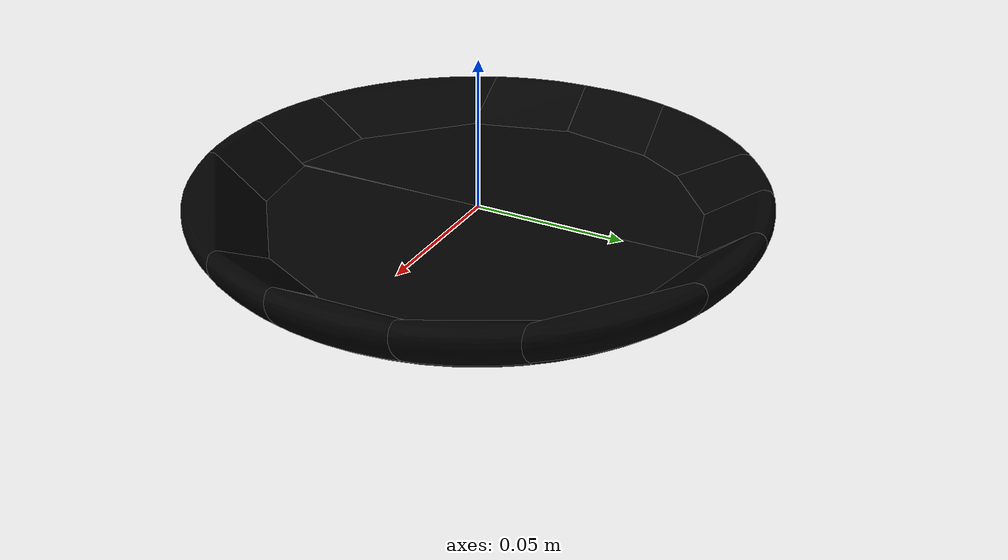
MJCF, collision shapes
<mujoco model="plate_52">
  <asset>
    <mesh file="visual/model_normalized_0.obj" name="model_normalized_0_vis" scale="0.185 0.185 0.185" refquat="1.0 0.0 0.0 0.0" />
    <mesh file="visual/model_normalized_1.obj" name="model_normalized_1_vis" scale="0.185 0.185 0.185" refquat="1.0 0.0 0.0 0.0" />
    <texture type="2d" name="image0" file="visual/image0.png" />
    <material name="plate_bottom" texture="image0" specular="0.5" shininess="0.15999998099999999" />
    <material name="plate_top" texture="image0" specular="0.5" shininess="0.15999998099999999" />
    <mesh file="collision/model_collision_0.obj" name="model_collision_0" scale="0.185 0.185 0.185" refquat="1.0 0.0 0.0 0.0" />
    <mesh file="collision/model_collision_1.obj" name="model_collision_1" scale="0.185 0.185 0.185" refquat="1.0 0.0 0.0 0.0" />
    <mesh file="collision/model_collision_2.obj" name="model_collision_2" scale="0.185 0.185 0.185" refquat="1.0 0.0 0.0 0.0" />
    <mesh file="collision/model_collision_3.obj" name="model_collision_3" scale="0.185 0.185 0.185" refquat="1.0 0.0 0.0 0.0" />
    <mesh file="collision/model_collision_4.obj" name="model_collision_4" scale="0.185 0.185 0.185" refquat="1.0 0.0 0.0 0.0" />
    <mesh file="collision/model_collision_5.obj" name="model_collision_5" scale="0.185 0.185 0.185" refquat="1.0 0.0 0.0 0.0" />
    <mesh file="collision/model_collision_6.obj" name="model_collision_6" scale="0.185 0.185 0.185" refquat="1.0 0.0 0.0 0.0" />
    <mesh file="collision/model_collision_7.obj" name="model_collision_7" scale="0.185 0.185 0.185" refquat="1.0 0.0 0.0 0.0" />
    <mesh file="collision/model_collision_8.obj" name="model_collision_8" scale="0.185 0.185 0.185" refquat="1.0 0.0 0.0 0.0" />
    <mesh file="collision/model_collision_9.obj" name="model_collision_9" scale="0.185 0.185 0.185" refquat="1.0 0.0 0.0 0.0" />
    <mesh file="collision/model_collision_10.obj" name="model_collision_10" scale="0.185 0.185 0.185" refquat="1.0 0.0 0.0 0.0" />
    <mesh file="collision/model_collision_11.obj" name="model_collision_11" scale="0.185 0.185 0.185" refquat="1.0 0.0 0.0 0.0" />
    <mesh file="collision/model_collision_12.obj" name="model_collision_12" scale="0.185 0.185 0.185" refquat="1.0 0.0 0.0 0.0" />
    <mesh file="collision/model_collision_13.obj" name="model_collision_13" scale="0.185 0.185 0.185" refquat="1.0 0.0 0.0 0.0" />
    <mesh file="collision/model_collision_14.obj" name="model_collision_14" scale="0.185 0.185 0.185" refquat="1.0 0.0 0.0 0.0" />
    <mesh file="collision/model_collision_15.obj" name="model_collision_15" scale="0.185 0.185 0.185" refquat="1.0 0.0 0.0 0.0" />
  </asset>
  <default>
    <default class="region">
      <geom group="1" conaffinity="0" contype="0" rgba="0 1 0 0" />
    </default>
  </default>
  <worldbody>
    <body>
      <body name="object">
        <geom density="0" type="mesh" mesh="model_normalized_0_vis" conaffinity="0" contype="0" group="2" material="plate_top" mass="0.18" />
        <geom density="0" type="mesh" mesh="model_normalized_1_vis" conaffinity="0" contype="0" group="2" material="plate_bottom" />
        <geom class="region" name="reg_bbox" type="box" pos="-0.00013850024999999808 -1.3412500000128947e-07 -6.983749999999941e-06" size="0.09107944235 0.09107499495 0.01223325265" />
        <geom density="0" friction="1.2 0.1 0.001" type="mesh" group="3" rgba="0 0 0 0" mesh="model_collision_0"  condim="4"/>        <geom density="0" friction="1.2 0.1 0.001" type="mesh" group="3" rgba="0 0 0 0" mesh="model_collision_1"  condim="4"/>        <geom density="0" friction="1.2 0.1 0.001" type="mesh" group="3" rgba="0 0 0 0" mesh="model_collision_2"  condim="4"/>        <geom density="0" friction="1.2 0.1 0.001" type="mesh" group="3" rgba="0 0 0 0" mesh="model_collision_3"  condim="4"/>        <geom density="0" friction="1.2 0.1 0.001" type="mesh" group="3" rgba="0 0 0 0" mesh="model_collision_4"  condim="4"/>        <geom density="0" friction="1.2 0.1 0.001" type="mesh" group="3" rgba="0 0 0 0" mesh="model_collision_5"  condim="4"/>        <geom density="0" friction="1.2 0.1 0.001" type="mesh" group="3" rgba="0 0 0 0" mesh="model_collision_6"  condim="4"/>        <geom density="0" friction="1.2 0.1 0.001" type="mesh" group="3" rgba="0 0 0 0" mesh="model_collision_7"  condim="4"/>        <geom density="0" friction="1.2 0.1 0.001" type="mesh" group="3" rgba="0 0 0 0" mesh="model_collision_8"  condim="4"/>        <geom density="0" friction="1.2 0.1 0.001" type="mesh" group="3" rgba="0 0 0 0" mesh="model_collision_9"  condim="4"/>        <geom density="0" friction="1.2 0.1 0.001" type="mesh" group="3" rgba="0 0 0 0" mesh="model_collision_10"  condim="4"/>        <geom density="0" friction="1.2 0.1 0.001" type="mesh" group="3" rgba="0 0 0 0" mesh="model_collision_11"  condim="4"/>        <geom density="0" friction="1.2 0.1 0.001" type="mesh" group="3" rgba="0 0 0 0" mesh="model_collision_12"  condim="4"/>        <geom density="0" friction="1.2 0.1 0.001" type="mesh" group="3" rgba="0 0 0 0" mesh="model_collision_13"  condim="4"/>        <geom density="0" friction="1.2 0.1 0.001" type="mesh" group="3" rgba="0 0 0 0" mesh="model_collision_14"  condim="4"/>        <geom density="0" friction="1.2 0.1 0.001" type="mesh" group="3" rgba="0 0 0 0" mesh="model_collision_15"  condim="4"/>      </body>
    </body>
  </worldbody>
</mujoco>
